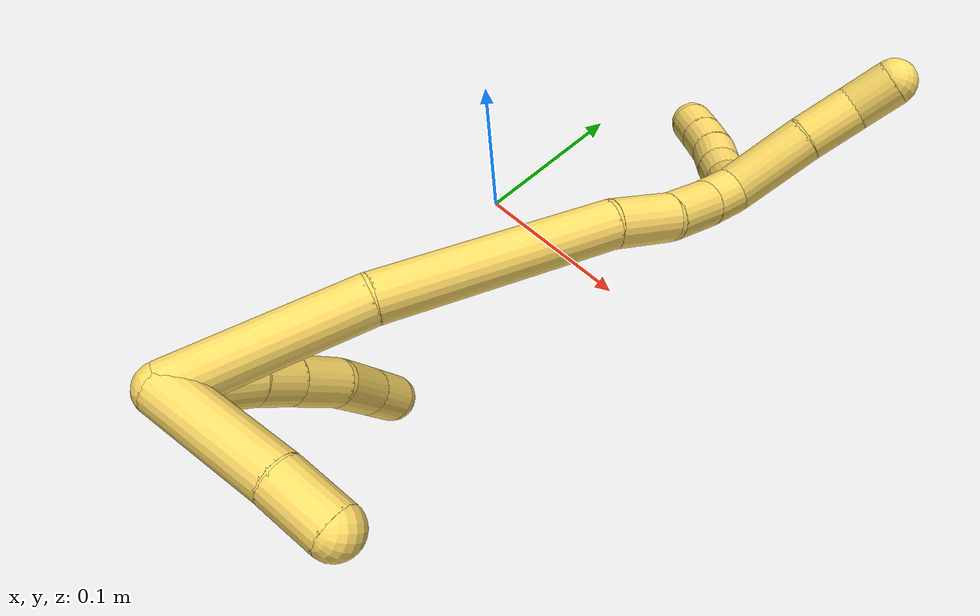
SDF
<sdf version="1.7">
 <world name="default">
  <model name="5">
   <static>0</static>
   <link name="5">
    <collision name="collision-cylinder-e_1_2_8">
     <pose>0.001014 0.002975 -0.021837 -3.00618 0.045974 -0.653799</pose>
     <geometry><cylinder><radius>0.0125</radius><length>0.044125</length></cylinder></geometry>
     <surface>
      <friction><ode><mu>1.16</mu><mu2>1.16</mu2><slip1>0</slip1><slip2>0</slip2></ode></friction>
      <contact><ode><kp>1e+06</kp><kd>1</kd><max_vel>0</max_vel><min_depth>0.001</min_depth></ode></contact>
     </surface>
    </collision>
    <visual name="visual-cylinder-e_1_2_8">
     <pose>0.001014 0.002975 -0.021837 -3.00618 0.045974 -0.653799</pose>
     <geometry><cylinder><radius>0.0125</radius><length>0.044125</length></cylinder></geometry>
     <material><ambient>1 0.858824 0.4 1</ambient></material>
    </visual>
    <collision name="collision-cylinder-e_2_8_9">
     <pose>0.001493 0.006752 -0.054593 -3.06828 -0.048816 1.17472</pose>
     <geometry><cylinder><radius>0.0125</radius><length>0.021921</length></cylinder></geometry>
     <surface>
      <friction><ode><mu>1.16</mu><mu2>1.16</mu2><slip1>0</slip1><slip2>0</slip2></ode></friction>
      <contact><ode><kp>1e+06</kp><kd>1</kd><max_vel>0</max_vel><min_depth>0.001</min_depth></ode></contact>
     </surface>
    </collision>
    <visual name="visual-cylinder-e_2_8_9">
     <pose>0.001493 0.006752 -0.054593 -3.06828 -0.048816 1.17472</pose>
     <geometry><cylinder><radius>0.0125</radius><length>0.021921</length></cylinder></geometry>
     <material><ambient>1 0.858824 0.4 1</ambient></material>
    </visual>
    <collision name="collision-cylinder-e_3_9_10">
     <pose>2e-05 0.008236 -0.080064 -3.09477 -0.064295 1.88282</pose>
     <geometry><cylinder><radius>0.0125</radius><length>0.029198</length></cylinder></geometry>
     <surface>
      <friction><ode><mu>1.16</mu><mu2>1.16</mu2><slip1>0</slip1><slip2>0</slip2></ode></friction>
      <contact><ode><kp>1e+06</kp><kd>1</kd><max_vel>0</max_vel><min_depth>0.001</min_depth></ode></contact>
     </surface>
    </collision>
    <visual name="visual-cylinder-e_3_9_10">
     <pose>2e-05 0.008236 -0.080064 -3.09477 -0.064295 1.88282</pose>
     <geometry><cylinder><radius>0.0125</radius><length>0.029198</length></cylinder></geometry>
     <material><ambient>1 0.858824 0.4 1</ambient></material>
    </visual>
    <collision name="collision-cylinder-e_4_10_11">
     <pose>-0.005889 0.009075 -0.109504 -3.13101 -0.32226 3.0765</pose>
     <geometry><cylinder><radius>0.0125</radius><length>0.031392</length></cylinder></geometry>
     <surface>
      <friction><ode><mu>1.16</mu><mu2>1.16</mu2><slip1>0</slip1><slip2>0</slip2></ode></friction>
      <contact><ode><kp>1e+06</kp><kd>1</kd><max_vel>0</max_vel><min_depth>0.001</min_depth></ode></contact>
     </surface>
    </collision>
    <visual name="visual-cylinder-e_4_10_11">
     <pose>-0.005889 0.009075 -0.109504 -3.13101 -0.32226 3.0765</pose>
     <geometry><cylinder><radius>0.0125</radius><length>0.031392</length></cylinder></geometry>
     <material><ambient>1 0.858824 0.4 1</ambient></material>
    </visual>
    <collision name="collision-cylinder-e_5_11_6">
     <pose>-0.013854 0.008861 -0.135677 3.10863 -0.25916 -2.88992</pose>
     <geometry><cylinder><radius>0.0125</radius><length>0.023365</length></cylinder></geometry>
     <surface>
      <friction><ode><mu>1.16</mu><mu2>1.16</mu2><slip1>0</slip1><slip2>0</slip2></ode></friction>
      <contact><ode><kp>1e+06</kp><kd>1</kd><max_vel>0</max_vel><min_depth>0.001</min_depth></ode></contact>
     </surface>
    </collision>
    <visual name="visual-cylinder-e_5_11_6">
     <pose>-0.013854 0.008861 -0.135677 3.10863 -0.25916 -2.88992</pose>
     <geometry><cylinder><radius>0.0125</radius><length>0.023365</length></cylinder></geometry>
     <material><ambient>1 0.858824 0.4 1</ambient></material>
    </visual>
    <collision name="collision-cylinder-e_1_2_12">
     <pose>0.021719 -0.024626 -0.009494 1.93875 0.688548 0.962967</pose>
     <geometry><cylinder><radius>0.0125</radius><length>0.06836</length></cylinder></geometry>
     <surface>
      <friction><ode><mu>1.16</mu><mu2>1.16</mu2><slip1>0</slip1><slip2>0</slip2></ode></friction>
      <contact><ode><kp>1e+06</kp><kd>1</kd><max_vel>0</max_vel><min_depth>0.001</min_depth></ode></contact>
     </surface>
    </collision>
    <visual name="visual-cylinder-e_1_2_12">
     <pose>0.021719 -0.024626 -0.009494 1.93875 0.688548 0.962967</pose>
     <geometry><cylinder><radius>0.0125</radius><length>0.06836</length></cylinder></geometry>
     <material><ambient>1 0.858824 0.4 1</ambient></material>
    </visual>
    <collision name="collision-cylinder-e_2_12_5">
     <pose>0.052225 -0.061367 -0.024114 1.97116 0.588947 0.858467</pose>
     <geometry><cylinder><radius>0.0125</radius><length>0.03164</length></cylinder></geometry>
     <surface>
      <friction><ode><mu>1.16</mu><mu2>1.16</mu2><slip1>0</slip1><slip2>0</slip2></ode></friction>
      <contact><ode><kp>1e+06</kp><kd>1</kd><max_vel>0</max_vel><min_depth>0.001</min_depth></ode></contact>
     </surface>
    </collision>
    <visual name="visual-cylinder-e_2_12_5">
     <pose>0.052225 -0.061367 -0.024114 1.97116 0.588947 0.858467</pose>
     <geometry><cylinder><radius>0.0125</radius><length>0.03164</length></cylinder></geometry>
     <material><ambient>1 0.858824 0.4 1</ambient></material>
    </visual>
    <collision name="collision-cylinder-e_1_2_13">
     <pose>0.032101 0.012539 -0.031276 -2.76031 0.761167 -2.24274</pose>
     <geometry><cylinder><radius>0.0125</radius><length>0.093079</length></cylinder></geometry>
     <surface>
      <friction><ode><mu>1.16</mu><mu2>1.16</mu2><slip1>0</slip1><slip2>0</slip2></ode></friction>
      <contact><ode><kp>1e+06</kp><kd>1</kd><max_vel>0</max_vel><min_depth>0.001</min_depth></ode></contact>
     </surface>
    </collision>
    <visual name="visual-cylinder-e_1_2_13">
     <pose>0.032101 0.012539 -0.031276 -2.76031 0.761167 -2.24274</pose>
     <geometry><cylinder><radius>0.0125</radius><length>0.093079</length></cylinder></geometry>
     <material><ambient>1 0.858824 0.4 1</ambient></material>
    </visual>
    <collision name="collision-cylinder-e_2_13_14">
     <pose>0.100725 0.037757 -0.109938 -2.88013 0.640011 -2.3862</pose>
     <geometry><cylinder><radius>0.0125</radius><length>0.122312</length></cylinder></geometry>
     <surface>
      <friction><ode><mu>1.16</mu><mu2>1.16</mu2><slip1>0</slip1><slip2>0</slip2></ode></friction>
      <contact><ode><kp>1e+06</kp><kd>1</kd><max_vel>0</max_vel><min_depth>0.001</min_depth></ode></contact>
     </surface>
    </collision>
    <visual name="visual-cylinder-e_2_13_14">
     <pose>0.100725 0.037757 -0.109938 -2.88013 0.640011 -2.3862</pose>
     <geometry><cylinder><radius>0.0125</radius><length>0.122312</length></cylinder></geometry>
     <material><ambient>1 0.858824 0.4 1</ambient></material>
    </visual>
    <collision name="collision-cylinder-e_3_14_15">
     <pose>0.145183 0.05215 -0.172443 -3.02875 0.480688 -2.68858</pose>
     <geometry><cylinder><radius>0.0125</radius><length>0.034324</length></cylinder></geometry>
     <surface>
      <friction><ode><mu>1.16</mu><mu2>1.16</mu2><slip1>0</slip1><slip2>0</slip2></ode></friction>
      <contact><ode><kp>1e+06</kp><kd>1</kd><max_vel>0</max_vel><min_depth>0.001</min_depth></ode></contact>
     </surface>
    </collision>
    <visual name="visual-cylinder-e_3_14_15">
     <pose>0.145183 0.05215 -0.172443 -3.02875 0.480688 -2.68858</pose>
     <geometry><cylinder><radius>0.0125</radius><length>0.034324</length></cylinder></geometry>
     <material><ambient>1 0.858824 0.4 1</ambient></material>
    </visual>
    <collision name="collision-cylinder-e_4_15_16">
     <pose>0.157973 0.05846 -0.20022 -2.7932 0.345978 -1.56369</pose>
     <geometry><cylinder><radius>0.0125</radius><length>0.028628</length></cylinder></geometry>
     <surface>
      <friction><ode><mu>1.16</mu><mu2>1.16</mu2><slip1>0</slip1><slip2>0</slip2></ode></friction>
      <contact><ode><kp>1e+06</kp><kd>1</kd><max_vel>0</max_vel><min_depth>0.001</min_depth></ode></contact>
     </surface>
    </collision>
    <visual name="visual-cylinder-e_4_15_16">
     <pose>0.157973 0.05846 -0.20022 -2.7932 0.345978 -1.56369</pose>
     <geometry><cylinder><radius>0.0125</radius><length>0.028628</length></cylinder></geometry>
     <material><ambient>1 0.858824 0.4 1</ambient></material>
    </visual>
    <collision name="collision-cylinder-e_5_16_1">
     <pose>0.167176 0.067173 -0.2219 -2.71361 0.413335 -1.53493</pose>
     <geometry><cylinder><radius>0.0125</radius><length>0.021658</length></cylinder></geometry>
     <surface>
      <friction><ode><mu>1.16</mu><mu2>1.16</mu2><slip1>0</slip1><slip2>0</slip2></ode></friction>
      <contact><ode><kp>1e+06</kp><kd>1</kd><max_vel>0</max_vel><min_depth>0.001</min_depth></ode></contact>
     </surface>
    </collision>
    <visual name="visual-cylinder-e_5_16_1">
     <pose>0.167176 0.067173 -0.2219 -2.71361 0.413335 -1.53493</pose>
     <geometry><cylinder><radius>0.0125</radius><length>0.021658</length></cylinder></geometry>
     <material><ambient>1 0.858824 0.4 1</ambient></material>
    </visual>
    <collision name="collision-cylinder-e_1_1_17">
     <pose>0.168209 0.077277 -0.238212 -2.45398 -0.338136 0.889786</pose>
     <geometry><cylinder><radius>0.0125</radius><length>0.02</length></cylinder></geometry>
     <surface>
      <friction><ode><mu>1.16</mu><mu2>1.16</mu2><slip1>0</slip1><slip2>0</slip2></ode></friction>
      <contact><ode><kp>1e+06</kp><kd>1</kd><max_vel>0</max_vel><min_depth>0.001</min_depth></ode></contact>
     </surface>
    </collision>
    <visual name="visual-cylinder-e_1_1_17">
     <pose>0.168209 0.077277 -0.238212 -2.45398 -0.338136 0.889786</pose>
     <geometry><cylinder><radius>0.0125</radius><length>0.02</length></cylinder></geometry>
     <material><ambient>1 0.858824 0.4 1</ambient></material>
    </visual>
    <collision name="collision-cylinder-e_2_17_18">
     <pose>0.161416 0.090746 -0.251155 -2.21781 -0.354948 0.691651</pose>
     <geometry><cylinder><radius>0.0125</radius><length>0.02</length></cylinder></geometry>
     <surface>
      <friction><ode><mu>1.16</mu><mu2>1.16</mu2><slip1>0</slip1><slip2>0</slip2></ode></friction>
      <contact><ode><kp>1e+06</kp><kd>1</kd><max_vel>0</max_vel><min_depth>0.001</min_depth></ode></contact>
     </surface>
    </collision>
    <visual name="visual-cylinder-e_2_17_18">
     <pose>0.161416 0.090746 -0.251155 -2.21781 -0.354948 0.691651</pose>
     <geometry><cylinder><radius>0.0125</radius><length>0.02</length></cylinder></geometry>
     <material><ambient>1 0.858824 0.4 1</ambient></material>
    </visual>
    <collision name="collision-cylinder-e_3_18_19">
     <pose>0.155272 0.106285 -0.262094 -2.15151 -0.270121 0.493155</pose>
     <geometry><cylinder><radius>0.0125</radius><length>0.02</length></cylinder></geometry>
     <surface>
      <friction><ode><mu>1.16</mu><mu2>1.16</mu2><slip1>0</slip1><slip2>0</slip2></ode></friction>
      <contact><ode><kp>1e+06</kp><kd>1</kd><max_vel>0</max_vel><min_depth>0.001</min_depth></ode></contact>
     </surface>
    </collision>
    <visual name="visual-cylinder-e_3_18_19">
     <pose>0.155272 0.106285 -0.262094 -2.15151 -0.270121 0.493155</pose>
     <geometry><cylinder><radius>0.0125</radius><length>0.02</length></cylinder></geometry>
     <material><ambient>1 0.858824 0.4 1</ambient></material>
    </visual>
    <collision name="collision-cylinder-e_4_19_20">
     <pose>0.148797 0.122463 -0.271805 -2.06953 -0.390564 0.642857</pose>
     <geometry><cylinder><radius>0.0125</radius><length>0.02</length></cylinder></geometry>
     <surface>
      <friction><ode><mu>1.16</mu><mu2>1.16</mu2><slip1>0</slip1><slip2>0</slip2></ode></friction>
      <contact><ode><kp>1e+06</kp><kd>1</kd><max_vel>0</max_vel><min_depth>0.001</min_depth></ode></contact>
     </surface>
    </collision>
    <visual name="visual-cylinder-e_4_19_20">
     <pose>0.148797 0.122463 -0.271805 -2.06953 -0.390564 0.642857</pose>
     <geometry><cylinder><radius>0.0125</radius><length>0.02</length></cylinder></geometry>
     <material><ambient>1 0.858824 0.4 1</ambient></material>
    </visual>
    <collision name="collision-cylinder-e_5_20_4">
     <pose>0.140914 0.138627 -0.280551 -2.06399 -0.41979 0.684663</pose>
     <geometry><cylinder><radius>0.0125</radius><length>0.02</length></cylinder></geometry>
     <surface>
      <friction><ode><mu>1.16</mu><mu2>1.16</mu2><slip1>0</slip1><slip2>0</slip2></ode></friction>
      <contact><ode><kp>1e+06</kp><kd>1</kd><max_vel>0</max_vel><min_depth>0.001</min_depth></ode></contact>
     </surface>
    </collision>
    <visual name="visual-cylinder-e_5_20_4">
     <pose>0.140914 0.138627 -0.280551 -2.06399 -0.41979 0.684663</pose>
     <geometry><cylinder><radius>0.0125</radius><length>0.02</length></cylinder></geometry>
     <material><ambient>1 0.858824 0.4 1</ambient></material>
    </visual>
    <collision name="collision-cylinder-e_1_1_21">
     <pose>0.192475 0.078754 -0.237737 -2.31069 1.12125 -1.91661</pose>
     <geometry><cylinder><radius>0.0125</radius><length>0.046521</length></cylinder></geometry>
     <surface>
      <friction><ode><mu>1.16</mu><mu2>1.16</mu2><slip1>0</slip1><slip2>0</slip2></ode></friction>
      <contact><ode><kp>1e+06</kp><kd>1</kd><max_vel>0</max_vel><min_depth>0.001</min_depth></ode></contact>
     </surface>
    </collision>
    <visual name="visual-cylinder-e_1_1_21">
     <pose>0.192475 0.078754 -0.237737 -2.31069 1.12125 -1.91661</pose>
     <geometry><cylinder><radius>0.0125</radius><length>0.046521</length></cylinder></geometry>
     <material><ambient>1 0.858824 0.4 1</ambient></material>
    </visual>
    <collision name="collision-cylinder-e_2_21_22">
     <pose>0.226293 0.09071 -0.25009 -2.4602 1.06488 -2.05826</pose>
     <geometry><cylinder><radius>0.0125</radius><length>0.029423</length></cylinder></geometry>
     <surface>
      <friction><ode><mu>1.16</mu><mu2>1.16</mu2><slip1>0</slip1><slip2>0</slip2></ode></friction>
      <contact><ode><kp>1e+06</kp><kd>1</kd><max_vel>0</max_vel><min_depth>0.001</min_depth></ode></contact>
     </surface>
    </collision>
    <visual name="visual-cylinder-e_2_21_22">
     <pose>0.226293 0.09071 -0.25009 -2.4602 1.06488 -2.05826</pose>
     <geometry><cylinder><radius>0.0125</radius><length>0.029423</length></cylinder></geometry>
     <material><ambient>1 0.858824 0.4 1</ambient></material>
    </visual>
    <collision name="collision-cylinder-e_3_22_3">
     <pose>0.250847 0.097588 -0.257184 -2.14888 1.33153 -1.9342</pose>
     <geometry><cylinder><radius>0.0125</radius><length>0.024056</length></cylinder></geometry>
     <surface>
      <friction><ode><mu>1.16</mu><mu2>1.16</mu2><slip1>0</slip1><slip2>0</slip2></ode></friction>
      <contact><ode><kp>1e+06</kp><kd>1</kd><max_vel>0</max_vel><min_depth>0.001</min_depth></ode></contact>
     </surface>
    </collision>
    <visual name="visual-cylinder-e_3_22_3">
     <pose>0.250847 0.097588 -0.257184 -2.14888 1.33153 -1.9342</pose>
     <geometry><cylinder><radius>0.0125</radius><length>0.024056</length></cylinder></geometry>
     <material><ambient>1 0.858824 0.4 1</ambient></material>
    </visual>
    <collision name="collision-sphere-3">
     <pose>0.262533 0.099976 -0.258742 0 -0 0</pose>
     <geometry><sphere><radius>0.0125</radius></sphere></geometry>
     <surface>
      <friction><ode><mu>1.16</mu><mu2>1.16</mu2><slip1>0</slip1><slip2>0</slip2></ode></friction>
      <contact><ode><kp>1e+06</kp><kd>1</kd><max_vel>0</max_vel><min_depth>0.001</min_depth></ode></contact>
     </surface>
    </collision>
    <visual name="visual-sphere-3">
     <pose>0.262533 0.099976 -0.258742 0 -0 0</pose>
     <geometry><sphere><radius>0.0125</radius></sphere></geometry>
     <material><ambient>1 0.858824 0.4 1</ambient></material>
    </visual>
    <collision name="collision-sphere-22">
     <pose>0.239162 0.095201 -0.255627 0 -0 0</pose>
     <geometry><sphere><radius>0.0125</radius></sphere></geometry>
     <surface>
      <friction><ode><mu>1.16</mu><mu2>1.16</mu2><slip1>0</slip1><slip2>0</slip2></ode></friction>
      <contact><ode><kp>1e+06</kp><kd>1</kd><max_vel>0</max_vel><min_depth>0.001</min_depth></ode></contact>
     </surface>
    </collision>
    <visual name="visual-sphere-22">
     <pose>0.239162 0.095201 -0.255627 0 -0 0</pose>
     <geometry><sphere><radius>0.0125</radius></sphere></geometry>
     <material><ambient>1 0.858824 0.4 1</ambient></material>
    </visual>
    <collision name="collision-sphere-21">
     <pose>0.213424 0.08622 -0.244552 0 -0 0</pose>
     <geometry><sphere><radius>0.0125</radius></sphere></geometry>
     <surface>
      <friction><ode><mu>1.16</mu><mu2>1.16</mu2><slip1>0</slip1><slip2>0</slip2></ode></friction>
      <contact><ode><kp>1e+06</kp><kd>1</kd><max_vel>0</max_vel><min_depth>0.001</min_depth></ode></contact>
     </surface>
    </collision>
    <visual name="visual-sphere-21">
     <pose>0.213424 0.08622 -0.244552 0 -0 0</pose>
     <geometry><sphere><radius>0.0125</radius></sphere></geometry>
     <material><ambient>1 0.858824 0.4 1</ambient></material>
    </visual>
    <collision name="collision-sphere-4">
     <pose>0.136838 0.146671 -0.284874 0 -0 0</pose>
     <geometry><sphere><radius>0.0125</radius></sphere></geometry>
     <surface>
      <friction><ode><mu>1.16</mu><mu2>1.16</mu2><slip1>0</slip1><slip2>0</slip2></ode></friction>
      <contact><ode><kp>1e+06</kp><kd>1</kd><max_vel>0</max_vel><min_depth>0.001</min_depth></ode></contact>
     </surface>
    </collision>
    <visual name="visual-sphere-4">
     <pose>0.136838 0.146671 -0.284874 0 -0 0</pose>
     <geometry><sphere><radius>0.0125</radius></sphere></geometry>
     <material><ambient>1 0.858824 0.4 1</ambient></material>
    </visual>
    <collision name="collision-sphere-20">
     <pose>0.144989 0.130584 -0.276227 0 -0 0</pose>
     <geometry><sphere><radius>0.0125</radius></sphere></geometry>
     <surface>
      <friction><ode><mu>1.16</mu><mu2>1.16</mu2><slip1>0</slip1><slip2>0</slip2></ode></friction>
      <contact><ode><kp>1e+06</kp><kd>1</kd><max_vel>0</max_vel><min_depth>0.001</min_depth></ode></contact>
     </surface>
    </collision>
    <visual name="visual-sphere-20">
     <pose>0.144989 0.130584 -0.276227 0 -0 0</pose>
     <geometry><sphere><radius>0.0125</radius></sphere></geometry>
     <material><ambient>1 0.858824 0.4 1</ambient></material>
    </visual>
    <collision name="collision-sphere-6">
     <pose>-0.016847 0.008488 -0.146963 0 -0 0</pose>
     <geometry><sphere><radius>0.0125</radius></sphere></geometry>
     <surface>
      <friction><ode><mu>1.16</mu><mu2>1.16</mu2><slip1>0</slip1><slip2>0</slip2></ode></friction>
      <contact><ode><kp>1e+06</kp><kd>1</kd><max_vel>0</max_vel><min_depth>0.001</min_depth></ode></contact>
     </surface>
    </collision>
    <visual name="visual-sphere-6">
     <pose>-0.016847 0.008488 -0.146963 0 -0 0</pose>
     <geometry><sphere><radius>0.0125</radius></sphere></geometry>
     <material><ambient>1 0.858824 0.4 1</ambient></material>
    </visual>
    <collision name="collision-sphere-11">
     <pose>-0.01086 0.009233 -0.124391 0 -0 0</pose>
     <geometry><sphere><radius>0.0125</radius></sphere></geometry>
     <surface>
      <friction><ode><mu>1.16</mu><mu2>1.16</mu2><slip1>0</slip1><slip2>0</slip2></ode></friction>
      <contact><ode><kp>1e+06</kp><kd>1</kd><max_vel>0</max_vel><min_depth>0.001</min_depth></ode></contact>
     </surface>
    </collision>
    <visual name="visual-sphere-11">
     <pose>-0.01086 0.009233 -0.124391 0 -0 0</pose>
     <geometry><sphere><radius>0.0125</radius></sphere></geometry>
     <material><ambient>1 0.858824 0.4 1</ambient></material>
    </visual>
    <collision name="collision-sphere-10">
     <pose>-0.000918 0.008918 -0.094616 0 -0 0</pose>
     <geometry><sphere><radius>0.0125</radius></sphere></geometry>
     <surface>
      <friction><ode><mu>1.16</mu><mu2>1.16</mu2><slip1>0</slip1><slip2>0</slip2></ode></friction>
      <contact><ode><kp>1e+06</kp><kd>1</kd><max_vel>0</max_vel><min_depth>0.001</min_depth></ode></contact>
     </surface>
    </collision>
    <visual name="visual-sphere-10">
     <pose>-0.000918 0.008918 -0.094616 0 -0 0</pose>
     <geometry><sphere><radius>0.0125</radius></sphere></geometry>
     <material><ambient>1 0.858824 0.4 1</ambient></material>
    </visual>
    <collision name="collision-sphere-9">
     <pose>0.000958 0.007554 -0.065511 0 -0 0</pose>
     <geometry><sphere><radius>0.0125</radius></sphere></geometry>
     <surface>
      <friction><ode><mu>1.16</mu><mu2>1.16</mu2><slip1>0</slip1><slip2>0</slip2></ode></friction>
      <contact><ode><kp>1e+06</kp><kd>1</kd><max_vel>0</max_vel><min_depth>0.001</min_depth></ode></contact>
     </surface>
    </collision>
    <visual name="visual-sphere-9">
     <pose>0.000958 0.007554 -0.065511 0 -0 0</pose>
     <geometry><sphere><radius>0.0125</radius></sphere></geometry>
     <material><ambient>1 0.858824 0.4 1</ambient></material>
    </visual>
    <collision name="collision-sphere-2">
     <geometry><sphere><radius>0.0125</radius></sphere></geometry>
     <surface>
      <friction><ode><mu>1.16</mu><mu2>1.16</mu2><slip1>0</slip1><slip2>0</slip2></ode></friction>
      <contact><ode><kp>1e+06</kp><kd>1</kd><max_vel>0</max_vel><min_depth>0.001</min_depth></ode></contact>
     </surface>
    </collision>
    <visual name="visual-sphere-2">
     <geometry><sphere><radius>0.0125</radius></sphere></geometry>
     <material><ambient>1 0.858824 0.4 1</ambient></material>
    </visual>
    <collision name="collision-sphere-19">
     <pose>0.152604 0.114343 -0.267382 0 -0 0</pose>
     <geometry><sphere><radius>0.0125</radius></sphere></geometry>
     <surface>
      <friction><ode><mu>1.16</mu><mu2>1.16</mu2><slip1>0</slip1><slip2>0</slip2></ode></friction>
      <contact><ode><kp>1e+06</kp><kd>1</kd><max_vel>0</max_vel><min_depth>0.001</min_depth></ode></contact>
     </surface>
    </collision>
    <visual name="visual-sphere-19">
     <pose>0.152604 0.114343 -0.267382 0 -0 0</pose>
     <geometry><sphere><radius>0.0125</radius></sphere></geometry>
     <material><ambient>1 0.858824 0.4 1</ambient></material>
    </visual>
    <collision name="collision-sphere-8">
     <pose>0.002028 0.00595 -0.043674 0 -0 0</pose>
     <geometry><sphere><radius>0.0125</radius></sphere></geometry>
     <surface>
      <friction><ode><mu>1.16</mu><mu2>1.16</mu2><slip1>0</slip1><slip2>0</slip2></ode></friction>
      <contact><ode><kp>1e+06</kp><kd>1</kd><max_vel>0</max_vel><min_depth>0.001</min_depth></ode></contact>
     </surface>
    </collision>
    <visual name="visual-sphere-8">
     <pose>0.002028 0.00595 -0.043674 0 -0 0</pose>
     <geometry><sphere><radius>0.0125</radius></sphere></geometry>
     <material><ambient>1 0.858824 0.4 1</ambient></material>
    </visual>
    <collision name="collision-sphere-12">
     <pose>0.043437 -0.049252 -0.018987 0 -0 0</pose>
     <geometry><sphere><radius>0.0125</radius></sphere></geometry>
     <surface>
      <friction><ode><mu>1.16</mu><mu2>1.16</mu2><slip1>0</slip1><slip2>0</slip2></ode></friction>
      <contact><ode><kp>1e+06</kp><kd>1</kd><max_vel>0</max_vel><min_depth>0.001</min_depth></ode></contact>
     </surface>
    </collision>
    <visual name="visual-sphere-12">
     <pose>0.043437 -0.049252 -0.018987 0 -0 0</pose>
     <geometry><sphere><radius>0.0125</radius></sphere></geometry>
     <material><ambient>1 0.858824 0.4 1</ambient></material>
    </visual>
    <collision name="collision-sphere-5">
     <pose>0.061013 -0.073481 -0.029241 0 -0 0</pose>
     <geometry><sphere><radius>0.0125</radius></sphere></geometry>
     <surface>
      <friction><ode><mu>1.16</mu><mu2>1.16</mu2><slip1>0</slip1><slip2>0</slip2></ode></friction>
      <contact><ode><kp>1e+06</kp><kd>1</kd><max_vel>0</max_vel><min_depth>0.001</min_depth></ode></contact>
     </surface>
    </collision>
    <visual name="visual-sphere-5">
     <pose>0.061013 -0.073481 -0.029241 0 -0 0</pose>
     <geometry><sphere><radius>0.0125</radius></sphere></geometry>
     <material><ambient>1 0.858824 0.4 1</ambient></material>
    </visual>
    <collision name="collision-sphere-13">
     <pose>0.064203 0.025077 -0.062552 0 -0 0</pose>
     <geometry><sphere><radius>0.0125</radius></sphere></geometry>
     <surface>
      <friction><ode><mu>1.16</mu><mu2>1.16</mu2><slip1>0</slip1><slip2>0</slip2></ode></friction>
      <contact><ode><kp>1e+06</kp><kd>1</kd><max_vel>0</max_vel><min_depth>0.001</min_depth></ode></contact>
     </surface>
    </collision>
    <visual name="visual-sphere-13">
     <pose>0.064203 0.025077 -0.062552 0 -0 0</pose>
     <geometry><sphere><radius>0.0125</radius></sphere></geometry>
     <material><ambient>1 0.858824 0.4 1</ambient></material>
    </visual>
    <collision name="collision-sphere-14">
     <pose>0.137248 0.050436 -0.157323 0 -0 0</pose>
     <geometry><sphere><radius>0.0125</radius></sphere></geometry>
     <surface>
      <friction><ode><mu>1.16</mu><mu2>1.16</mu2><slip1>0</slip1><slip2>0</slip2></ode></friction>
      <contact><ode><kp>1e+06</kp><kd>1</kd><max_vel>0</max_vel><min_depth>0.001</min_depth></ode></contact>
     </surface>
    </collision>
    <visual name="visual-sphere-14">
     <pose>0.137248 0.050436 -0.157323 0 -0 0</pose>
     <geometry><sphere><radius>0.0125</radius></sphere></geometry>
     <material><ambient>1 0.858824 0.4 1</ambient></material>
    </visual>
    <collision name="collision-sphere-15">
     <pose>0.153119 0.053863 -0.187564 0 -0 0</pose>
     <geometry><sphere><radius>0.0125</radius></sphere></geometry>
     <surface>
      <friction><ode><mu>1.16</mu><mu2>1.16</mu2><slip1>0</slip1><slip2>0</slip2></ode></friction>
      <contact><ode><kp>1e+06</kp><kd>1</kd><max_vel>0</max_vel><min_depth>0.001</min_depth></ode></contact>
     </surface>
    </collision>
    <visual name="visual-sphere-15">
     <pose>0.153119 0.053863 -0.187564 0 -0 0</pose>
     <geometry><sphere><radius>0.0125</radius></sphere></geometry>
     <material><ambient>1 0.858824 0.4 1</ambient></material>
    </visual>
    <collision name="collision-sphere-16">
     <pose>0.162827 0.063058 -0.212877 0 -0 0</pose>
     <geometry><sphere><radius>0.0125</radius></sphere></geometry>
     <surface>
      <friction><ode><mu>1.16</mu><mu2>1.16</mu2><slip1>0</slip1><slip2>0</slip2></ode></friction>
      <contact><ode><kp>1e+06</kp><kd>1</kd><max_vel>0</max_vel><min_depth>0.001</min_depth></ode></contact>
     </surface>
    </collision>
    <visual name="visual-sphere-16">
     <pose>0.162827 0.063058 -0.212877 0 -0 0</pose>
     <geometry><sphere><radius>0.0125</radius></sphere></geometry>
     <material><ambient>1 0.858824 0.4 1</ambient></material>
    </visual>
    <collision name="collision-sphere-1">
     <pose>0.171526 0.071289 -0.230922 0 -0 0</pose>
     <geometry><sphere><radius>0.0125</radius></sphere></geometry>
     <surface>
      <friction><ode><mu>1.16</mu><mu2>1.16</mu2><slip1>0</slip1><slip2>0</slip2></ode></friction>
      <contact><ode><kp>1e+06</kp><kd>1</kd><max_vel>0</max_vel><min_depth>0.001</min_depth></ode></contact>
     </surface>
    </collision>
    <visual name="visual-sphere-1">
     <pose>0.171526 0.071289 -0.230922 0 -0 0</pose>
     <geometry><sphere><radius>0.0125</radius></sphere></geometry>
     <material><ambient>1 0.858824 0.4 1</ambient></material>
    </visual>
    <collision name="collision-sphere-18">
     <pose>0.157941 0.098227 -0.256807 0 -0 0</pose>
     <geometry><sphere><radius>0.0125</radius></sphere></geometry>
     <surface>
      <friction><ode><mu>1.16</mu><mu2>1.16</mu2><slip1>0</slip1><slip2>0</slip2></ode></friction>
      <contact><ode><kp>1e+06</kp><kd>1</kd><max_vel>0</max_vel><min_depth>0.001</min_depth></ode></contact>
     </surface>
    </collision>
    <visual name="visual-sphere-18">
     <pose>0.157941 0.098227 -0.256807 0 -0 0</pose>
     <geometry><sphere><radius>0.0125</radius></sphere></geometry>
     <material><ambient>1 0.858824 0.4 1</ambient></material>
    </visual>
    <collision name="collision-sphere-17">
     <pose>0.164891 0.083264 -0.245502 0 -0 0</pose>
     <geometry><sphere><radius>0.0125</radius></sphere></geometry>
     <surface>
      <friction><ode><mu>1.16</mu><mu2>1.16</mu2><slip1>0</slip1><slip2>0</slip2></ode></friction>
      <contact><ode><kp>1e+06</kp><kd>1</kd><max_vel>0</max_vel><min_depth>0.001</min_depth></ode></contact>
     </surface>
    </collision>
    <visual name="visual-sphere-17">
     <pose>0.164891 0.083264 -0.245502 0 -0 0</pose>
     <geometry><sphere><radius>0.0125</radius></sphere></geometry>
     <material><ambient>1 0.858824 0.4 1</ambient></material>
    </visual>
    <inertial>
     <pose>0.09104 0.036638 -0.128018 0 -0 0</pose>
     <mass>0.75</mass>
     <inertia>
      <ixx>-0.000202</ixx>
      <ixy>0</ixy>
      <ixz>0</ixz>
      <iyy>0.000101</iyy>
      <iyz>0</iyz>
      <izz>-0.000257</izz>
     </inertia>
    </inertial>
   </link>
   <pose>0.056576 -0.235421 0.128204 0.367865 -0.681016 0.740984</pose>
  </model>
 </world>
</sdf>
